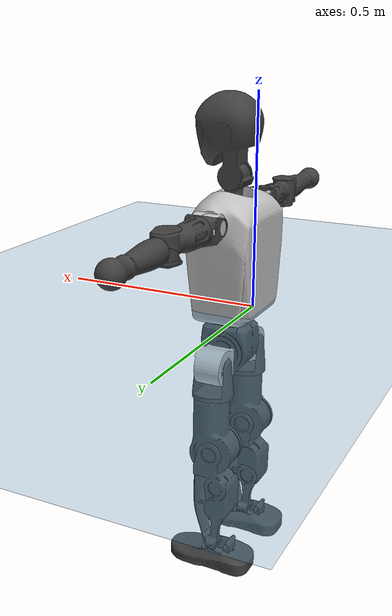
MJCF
<mujoco model="T1">
  <compiler angle="radian" assetdir="assets" balanceinertia="true" inertiafromgeom="false"/>

  <option timestep="0.005" density="1.2" viscosity="2e-05"/>

  <size nkey="1"/>

  <visual>
    <quality shadowsize="8192"/>
    <map shadowclip="0.5"/>
  </visual>

  <default>
    <default class="/">
      <joint armature="0.01" damping="0.01" frictionloss="0.1"/>
      <geom contype="0" conaffinity="0" group="1" solref="-1000 -80"/>
      <site size="0.01 0.005 0.005" group="5"/>
      <general forcelimited="true" biastype="affine" gainprm="25" biasprm="0 -25 -0.6"/>
      <default class="t1">
        <geom rgba="0.25 0.25 0.25 1"/>
        <default class="visual">
          <geom type="mesh" group="2"/>
        </default>
        <default class="collision">
          <geom group="3"/>
        </default>
        <default class="foot">
          <geom size="0.1115 0.05 0.015" type="box" condim="6" group="4" priority="1" solimp="0.015 1 0.015"/>
        </default>
        <default class="reward_collision_sphere">
          <geom group="5" rgba="1 0 0 1"/>
        </default>
      </default>
    </default>
  </default>

  <asset>
    <texture type="skybox" colorspace="auto" name="//unnamed_texture_0" builtin="gradient" rgb1="0.95 0.95 0.95" rgb2="0.95 0.95 0.95" width="100" height="600"/>
    <texture type="2d" colorspace="auto" name="texplane" builtin="checker" rgb1="0.345 0.575 0.748" rgb2="0.345 0.575 0.748" markrgb="1 1 1" width="512" height="512"/>
    <material name="MatPlane" class="/" texture="texplane" texuniform="true" texrepeat="2 2" specular="0.9"/>
    <mesh name="Trunk" class="/" file="Trunk.stl"/>
    <mesh name="H1" class="/" file="H1.stl"/>
    <mesh name="H2" class="/" file="H2.stl"/>
    <mesh name="AL1" class="/" file="AL1.stl"/>
    <mesh name="AL2" class="/" file="AL2.stl"/>
    <mesh name="AL3" class="/" file="AL3.stl"/>
    <mesh name="left_hand_link" class="/" file="left_hand_link.stl"/>
    <mesh name="AR1" class="/" file="AR1.stl"/>
    <mesh name="AR2" class="/" file="AR2.stl"/>
    <mesh name="AR3" class="/" file="AR3.stl"/>
    <mesh name="right_hand_link" class="/" file="right_hand_link.stl"/>
    <mesh name="Waist" class="/" file="Waist.stl"/>
    <mesh name="Hip_Pitch_Left" class="/" file="Hip_Pitch_Left.stl"/>
    <mesh name="Hip_Roll_Left" class="/" file="Hip_Roll_Left.stl"/>
    <mesh name="Hip_Yaw_Left" class="/" file="Hip_Yaw_Left.stl"/>
    <mesh name="Shank_Left" class="/" file="Shank_Left.stl"/>
    <mesh name="Ankle_Cross_Left" class="/" file="Ankle_Cross_Left.stl"/>
    <mesh name="left_foot_link" class="/" file="left_foot_link.stl"/>
    <mesh name="Hip_Pitch_Right" class="/" file="Hip_Pitch_Right.stl"/>
    <mesh name="Hip_Roll_Right" class="/" file="Hip_Roll_Right.stl"/>
    <mesh name="Hip_Yaw_Right" class="/" file="Hip_Yaw_Right.stl"/>
    <mesh name="Shank_Right" class="/" file="Shank_Right.stl"/>
    <mesh name="Ankle_Cross_Right" class="/" file="Ankle_Cross_Right.stl"/>
    <mesh name="right_foot_link" class="/" file="right_foot_link.stl"/>
  </asset>

  <worldbody>
    <geom name="floor" class="/" size="100 100 0.125" type="plane" group="0" material="MatPlane"/>
    <light name="toplight_shadow" class="/" pos="0 0 5" dir="0.0990148 0.0990148 -0.990148" type="directional" ambient="0.04 0.04 0.04" diffuse="0.55 0.55 0.55" specular="0.12 0.12 0.12"/>
    <light name="toplight_fill" class="/" pos="0 0 5" dir="0.0990148 0.0990148 -0.990148" type="directional" castshadow="false" ambient="0.04 0.04 0.04" diffuse="0.3 0.3 0.3" specular="0.08 0.08 0.08"/>
    <body name="trunk" childclass="t1" pos="-6.54354e-05 -0.000410013 0.000360457" quat="1 0.000811755 -0.000328301 -0.000361621">
      <inertial pos="0.0517199 -0.000354859 0.106676" quat="0.999958 0.00132062 -0.00406218 0.00808797" mass="9.96379" diaginertia="0.0731375 0.043247 0.0617387"/>
      <joint name="//unnamed_joint_0" type="free" armature="0" damping="0" frictionloss="0"/>
      <geom name="//unnamed_geom_1" class="visual" rgba="0.76 0.76 0.76 1" mesh="Trunk"/>
      <geom name="//unnamed_geom_2" class="collision" size="0.0712961 0.0950614 0.142592" pos="0.0566778 0 0.121802" type="box"/>
      <geom name="//unnamed_geom_3" class="reward_collision_sphere" size="0.109321" pos="0.0566778 0 0.101502"/>
      <geom name="//unnamed_geom_4" class="reward_collision_sphere" size="0.0142592" pos="0.0566778 0.0758368 0"/>
      <geom name="//unnamed_geom_5" class="reward_collision_sphere" size="0.0142592" pos="0.0566778 -0.0758368 0"/>
      <geom name="//unnamed_geom_6" class="reward_collision_sphere" size="0.0142592" pos="0.0566778 0.0954651 0.182703"/>
      <geom name="//unnamed_geom_7" class="reward_collision_sphere" size="0.0142592" pos="0.0566778 -0.0954651 0.182703"/>
      <site name="imu" pos="0.00871634 -0.000106889 -0.00834043" size="0.00950614"/>
      <camera name="track" pos="0 -1.7844 0" quat="0.707107 0.707107 0 0" mode="trackcom"/>
      <camera name="ego_camera" pos="0.115245 0 0.426306" quat="-0.5 -0.5 0.5 0.5"/>
      <body name="H1" pos="0.0560577 -0.000415543 0.243993" quat="1 -1.30222e-05 2.73992e-05 -0.000261134">
        <inertial pos="-0.000729825 -0.00164512 0.058236" quat="0.763662 -0.0136306 0.00150946 0.645471" mass="0.377829" diaginertia="0.000178223 0.000123973 0.000161345"/>
        <joint name="AAHead_yaw" pos="0 0 0" axis="0.0040604 0.000466541 0.999992" stiffness="0.000620246" range="-1.53378 1.58151" armature="0.0107602" damping="0.00963984" frictionloss="0.107192"/>
        <geom name="//unnamed_geom_8" class="visual" mesh="H1"/>
        <body name="H2" pos="-0.000814459 -0.00284268 0.0638952" quat="1 7.54524e-05 -0.000195911 6.35386e-06">
          <inertial pos="0.0086759 -0.00188463 0.0974534" quat="0.987546 0.108153 -0.0852914 -0.0760294" mass="0.544869" diaginertia="0.00153464 0.00105762 0.0018598"/>
          <joint name="Head_pitch" pos="0 0 0" axis="-0.00286536 -0.999988 -0.00408474" range="-1.22106 0.369549" armature="0.00998283" damping="0" frictionloss="0.0929006"/>
          <geom name="//unnamed_geom_9" class="visual" mesh="H2"/>
          <geom name="//unnamed_geom_10" class="collision" size="0.0760492" pos="0.0094463 0 0.111652"/>
          <geom name="//unnamed_geom_11" class="reward_collision_sphere" size="0.0855553" pos="0.0188926 0 0.101502"/>
        </body>
      </body>
      <body name="AL1" pos="0.0544472 0.096651 0.219863" quat="0.999999 -0.00133924 6.09161e-05 -9.6951e-05">
        <inertial pos="-0.00238324 0.0400725 -0.000390011" quat="0.503891 0.495748 -0.504403 0.495888" mass="0.451515" diaginertia="0.00102255 0.000701871 0.000303862"/>
        <joint name="Left_Shoulder_Pitch" pos="0 0 0" axis="-0.00963473 0.999919 0.00833652" stiffness="0.00260673" range="-3.32042 1.27511" armature="0.00958296" damping="0" frictionloss="0.0975559"/>
        <geom name="//unnamed_geom_12" class="visual" rgba="0.76 0.76 0.76 1" mesh="AL1"/>
        <body name="AL2" pos="-0.00113572 0.0419478 -0.000585664" quat="1 -0.0001989 9.73405e-05 0.00021933">
          <inertial pos="0.00390722 0.0364612 -0.000638867" quat="0.490225 0.510814 -0.485593 0.512785" mass="0.13925" diaginertia="0.000307786 0.000195434 0.00019127"/>
          <joint name="Left_Shoulder_Roll" pos="0 0 0" axis="-1 -0.000693936 0.000318765" range="-1.56675 1.74952" armature="0.0108015" damping="0.00894195" frictionloss="0.0958699"/>
          <geom name="//unnamed_geom_13" class="visual" mesh="AL2"/>
          <body name="AL3" pos="0.000192264 0.0539819 0.000499619" quat="1 -0.000505182 -7.20125e-05 -0.000274026">
            <inertial pos="0.0020469 0.073511 -0.00097159" quat="0.706911 0.707293 0.00288204 -0.00238198" mass="0.826421" diaginertia="0.00970782 0.00710426 0.000635713"/>
            <joint name="Left_Elbow_Pitch" pos="0 0 0" axis="-0.000661512 -1 -0.000524765" range="-2.32725 2.27566" armature="0.0107787" damping="0.0134553" frictionloss="0.0924748"/>
            <geom name="//unnamed_geom_14" class="visual" mesh="AL3"/>
            <geom name="//unnamed_geom_15" class="collision" size="0.0285184 0.0712961" pos="0 0.0446099 0" quat="0.707105 0.707108 0 0" type="cylinder"/>
            <geom name="//unnamed_geom_16" class="reward_collision_sphere" size="0.0342221"/>
            <body name="left_hand_link" pos="0.00176264 0.130382 -0.000808061" quat="0.999999 -0.000867293 0.000495205 -0.000840377">
              <inertial pos="-0.00270014 0.0977449 0.000751633" quat="0.710816 0.70337 -0.000191145 -0.00349303" mass="0.280462" diaginertia="0.00592697 0.00456879 0.000238264"/>
              <joint name="Left_Elbow_Yaw" pos="0 0 0" axis="-0.000426014 0.00412335 0.999991" range="-2.45168 -0.0494166" armature="0.0097724" damping="0.0128274" frictionloss="0.0964066"/>
              <geom name="//unnamed_geom_17" class="visual" mesh="left_hand_link"/>
              <geom name="//unnamed_geom_18" class="collision" size="0.0285184 0.0831788" pos="0 0.115986 0" quat="0.707105 0.707108 0 0" type="cylinder"/>
              <geom name="//unnamed_geom_19" class="reward_collision_sphere" size="0.0475307"/>
              <geom name="//unnamed_geom_20" class="reward_collision_sphere" size="0.0332715" pos="0 0.0981417 0"/>
              <geom name="//unnamed_geom_21" class="reward_collision_sphere" size="0.0332715" pos="0 0.191822 0"/>
            </body>
          </body>
        </body>
      </body>
      <body name="AR1" pos="0.0534378 -0.096392 0.220413" quat="1 0.000305821 0.000302735 0.000151669">
        <inertial pos="-0.0020253 -0.04298 0.000825193" quat="0.502535 0.495099 -0.501977 0.500355" mass="0.436843" diaginertia="0.000994786 0.000705124 0.000304661"/>
        <joint name="Right_Shoulder_Pitch" pos="0 0 0" axis="0.00684525 -0.999881 -0.0138426" range="-1.22582 3.29964" armature="0.0106664" damping="0.0130855" frictionloss="0.0941834"/>
        <geom name="//unnamed_geom_22" class="visual" rgba="0.76 0.76 0.76 1" mesh="AR1"/>
        <body name="AR2" pos="0.00219597 -0.0392945 -0.000950764" quat="0.999999 -2.0516e-05 0.00110656 0.000896548">
          <inertial pos="0.00249688 -0.033399 0.00135344" quat="0.511555 0.488057 -0.511737 0.488095" mass="0.133171" diaginertia="0.000302408 0.000201829 0.000193056"/>
          <joint name="Right_Shoulder_Roll" pos="0 0 0" axis="-0.999984 -0.000357201 -0.00567652" range="-1.75062 1.55727" armature="0.00935245" damping="0.00572444" frictionloss="0.107518"/>
          <geom name="//unnamed_geom_23" class="visual" mesh="AR2"/>
          <body name="AR3" pos="0.000717377 -0.0551642 -0.00256621" quat="1 -4.15396e-05 -1.61647e-05 5.74944e-05">
            <inertial pos="0.000136914 -0.0788539 0.000423767" quat="0.712056 0.702042 0.0105534 0.00131571" mass="0.871769" diaginertia="0.00964701 0.00730089 0.000686732"/>
            <joint name="Right_Elbow_Pitch" pos="0 0 0" axis="0.0071393 0.99993 0.00944065" range="-2.32024 2.25031" armature="0.00816713" damping="0.00691597" frictionloss="0.101476"/>
            <geom name="//unnamed_geom_24" class="visual" mesh="AR3"/>
            <geom name="//unnamed_geom_25" class="collision" size="0.0285184 0.0712961" pos="0 -0.0446099 0" quat="0.707105 0.707108 0 0" type="cylinder"/>
            <geom name="//unnamed_geom_26" class="reward_collision_sphere" size="0.0342221"/>
            <body name="right_hand_link" pos="-0.00091297 -0.13139 -0.00190615" quat="0.999999 -0.000385748 -7.2423e-07 0.000938954">
              <inertial pos="-1.30363e-05 -0.0978229 0.0036514" quat="0.705984 0.708228 0.000307931 0.000130894" mass="0.283063" diaginertia="0.00611956 0.00460304 0.0002312"/>
              <joint name="Right_Elbow_Yaw" pos="0 0 0" axis="0.00183924 0.00213681 0.999996" range="-0.011072 2.46624" armature="0.0107968" damping="0" frictionloss="0.103808"/>
              <geom name="//unnamed_geom_27" class="visual" mesh="right_hand_link"/>
              <geom name="//unnamed_geom_28" class="collision" size="0.0285184 0.0831788" pos="0 -0.115986 0" quat="0.707105 0.707108 0 0" type="cylinder"/>
              <geom name="//unnamed_geom_29" class="reward_collision_sphere" size="0.0475307"/>
              <geom name="//unnamed_geom_30" class="reward_collision_sphere" size="0.0332715" pos="0 -0.0981417 0"/>
              <geom name="//unnamed_geom_31" class="reward_collision_sphere" size="0.0332715" pos="0 -0.191822 0"/>
            </body>
          </body>
        </body>
      </body>
      <body name="Waist" pos="0.0592656 -0.00370321 -0.114303" quat="1 0.000330774 -0.000294122 -0.000127569">
        <inertial pos="-5.7261e-05 0.000417295 0.00662716" quat="0.983074 0.00148871 -0.182964 -0.00937323" mass="2.14512" diaginertia="0.00387747 0.00288895 0.00496292"/>
        <joint name="Waist" pos="0 0 0" axis="0.00186402 -0.0122997 0.999923" range="-1.58728 1.51981" armature="0.00980317" damping="0.0148273" frictionloss="0.10669"/>
        <geom name="//unnamed_geom_32" class="visual" mesh="Waist"/>
        <body name="Hip_Pitch_Left" pos="0.000715994 0.0956535 0.000120546" quat="1 -5.21771e-05 2.7981e-05 2.15167e-05">
          <inertial pos="0.000594548 -0.00746629 -0.019084" quat="0.97628 0.216075 0.0135961 0.00220922" mass="0.881837" diaginertia="0.00135417 0.000855344 0.00135428"/>
          <joint name="Left_Hip_Pitch" pos="0 0 0" axis="0.00694959 0.999888 -0.0132347" range="-1.80861 1.62395" armature="0.00977788" damping="0" frictionloss="0.0926903"/>
          <geom name="//unnamed_geom_33" class="visual" rgba="0.76 0.76 0.76 1" mesh="Hip_Pitch_Left"/>
          <body name="Hip_Roll_Left" pos="0.00109079 0.00228793 -0.0187897" quat="0.999999 0.000350924 -0.00139055 -0.000527668">
            <inertial pos="-0.00112279 -8.18734e-05 -0.0551819" quat="0.709865 -0.00634308 -0.00758681 0.704269" mass="0.32375" diaginertia="0.00130811 0.000834689 0.000536328"/>
            <joint name="Left_Hip_Roll" pos="0 0 0" axis="-0.999941 0.0107415 0.0018409" stiffness="0.00615077" range="-1.57205 0.19519" armature="0.00933698" damping="0.0136158" frictionloss="0.0995923"/>
            <geom name="//unnamed_geom_34" class="visual" mesh="Hip_Roll_Left"/>
            <geom name="//unnamed_geom_35" class="reward_collision_sphere" size="0.0522838"/>
            <body name="Hip_Yaw_Left" pos="0.000547349 -0.00073331 -0.083904" quat="1 -1.60771e-05 0.000280013 5.88524e-05">
              <inertial pos="-0.00601952 -0.00170226 -0.0910124" quat="0.702383 -0.0444621 -0.0310082 0.709732" mass="1.80514" diaginertia="0.019248 0.0139569 0.00270209"/>
              <joint name="Left_Hip_Yaw" pos="0 0 0" axis="-0.00137668 -0.00411074 -0.999991" range="-1.04818 0.997926" armature="0.00952038" damping="0.0095407" frictionloss="0.0955755"/>
              <geom name="//unnamed_geom_36" class="visual" mesh="Hip_Yaw_Left"/>
              <geom name="//unnamed_geom_37" class="collision" size="0.0475307 0.0760492" type="cylinder"/>
              <body name="Shank_Left" pos="-0.0116986 -0.00233157 -0.136818" quat="1 -0.000100829 -0.000110439 -0.000252098">
                <inertial pos="-0.00515595 -0.00139853 -0.126421" quat="0.997637 -0.00973951 -0.0246934 0.0633702" mass="1.51977" diaginertia="0.0264086 0.0196859 0.00196219"/>
                <joint name="Left_Knee_Pitch" pos="0 0 0" axis="-0.00627044 0.99998 -0.000545893" range="-0.0160343 2.33021" armature="0.0107222" damping="0" frictionloss="0.10019"/>
                <geom name="//unnamed_geom_38" class="visual" mesh="Shank_Left"/>
                <geom name="//unnamed_geom_39" class="collision" size="0.0475307 0.0712961" pos="0 0 -0.121802" type="cylinder"/>
                <geom name="//unnamed_geom_40" class="reward_collision_sphere" size="0.0617899"/>
                <body name="Ankle_Cross_Left" pos="0.00167069 0.00171217 -0.286981" quat="0.999999 0.00117314 -0.00045344 -0.000368256">
                  <inertial pos="-0.00354722 -0.00240285 -0.00781221" quat="0.449848 0.544178 0.550761 0.445163" mass="0.0623915" diaginertia="2.16211e-05 1.48414e-05 1.23879e-05"/>
                  <joint name="Left_Ankle_Pitch" pos="0 0 0" axis="-0.00263305 0.999971 0.00710821" range="-0.882255 0.331149" armature="0.00986014" damping="0.00578042" frictionloss="0.0957337"/>
                  <geom name="//unnamed_geom_41" class="visual" mesh="Ankle_Cross_Left"/>
                  <body name="left_foot_link" pos="-0.00236997 -0.00282778 -0.0119519" quat="1 0.000108258 -5.85735e-05 1.82955e-05">
                    <inertial pos="0.00222468 -0.000139248 -0.00655962" quat="-1.89122e-05 0.624279 0.00283746 0.781196" mass="0.59727" diaginertia="0.00208262 0.00135203 0.00240243"/>
                    <joint name="Left_Ankle_Roll" pos="0 0 0" axis="-1 0.000246789 -9.08436e-05" stiffness="0.0056909" range="-0.442319 0.4368" armature="0.00818676" damping="0.00347786" frictionloss="0.0944844"/>
                    <geom name="//unnamed_geom_42" class="visual" mesh="left_foot_link"/>
                    <geom name="left_foot" class="foot" size="0.10237 0.0465005 0.0136125" pos="0.0094463 0 -0.0152252"/>
                    <geom name="//unnamed_geom_44" class="reward_collision_sphere" size="0.049432" pos="0.0094463 0 -0.0152252"/>
                    <geom name="//unnamed_geom_45" class="reward_collision_sphere" size="0.0285184" pos="0.0897399 -0.0205205 -0.0152252"/>
                    <geom name="//unnamed_geom_46" class="reward_collision_sphere" size="0.0285184" pos="-0.0661241 -0.0205205 -0.0152252"/>
                    <site name="left_foot" class="foot" pos="0.0094463 0 -0.0152252" size="0.00950614"/>
                  </body>
                </body>
              </body>
            </body>
          </body>
        </body>
        <body name="Hip_Pitch_Right" pos="-0.00257114 -0.0939751 -0.00111712" quat="0.999999 0.00034226 -0.000260085 -0.00142939">
          <inertial pos="0.00119085 0.004137 -0.0180456" quat="0.973594 -0.227421 0.0195848 -0.00339005" mass="0.860539" diaginertia="0.00131257 0.000804817 0.00131399"/>
          <joint name="Right_Hip_Pitch" pos="0 0 0" axis="-1.00245e-05 -1 2.51844e-06" range="-1.6076 1.79033" armature="0.00939613" damping="0.012619" frictionloss="0.10781"/>
          <geom name="//unnamed_geom_47" class="visual" rgba="0.76 0.76 0.76 1" mesh="Hip_Pitch_Right"/>
          <body name="Hip_Roll_Right" pos="-0.000958996 0.000326533 -0.0197227" quat="1 0.000177369 -0.000117327 0.000222233">
            <inertial pos="-0.00148756 0.00255886 -0.0571307" quat="0.707118 -0.00578522 -0.00603899 0.707046" mass="0.333285" diaginertia="0.001336 0.000853048 0.000551301"/>
            <joint name="Right_Hip_Roll" pos="0 0 0" axis="-0.999983 0.00355954 -0.00454635" stiffness="0.00190427" range="-0.206395 1.57094" armature="0.00949708" damping="0.00655833" frictionloss="0.0934941"/>
            <geom name="//unnamed_geom_48" class="visual" mesh="Hip_Roll_Right"/>
            <geom name="//unnamed_geom_49" class="reward_collision_sphere" size="0.0522838"/>
            <body name="Hip_Yaw_Right" pos="-0.000377455 -0.001838 -0.0815097" quat="1 0.000208776 8.8815e-05 -0.000110037">
              <inertial pos="-0.00542591 -0.00147642 -0.0917712" quat="0.714315 -0.0309325 -0.0339021 0.698318" mass="1.84462" diaginertia="0.0198325 0.0142152 0.0028319"/>
              <joint name="Right_Hip_Yaw" pos="0 0 0" axis="-0.00555184 0.00240955 -0.999982" stiffness="0.00446284" range="-0.979943 0.954695" armature="0.00829167" damping="0.0193644" frictionloss="0.10763"/>
              <geom name="//unnamed_geom_50" class="visual" mesh="Hip_Yaw_Right"/>
              <geom name="//unnamed_geom_51" class="collision" size="0.0475307 0.0760492" type="cylinder"/>
              <body name="Shank_Right" pos="-0.0125863 0.00230947 -0.136037" quat="0.999999 -0.000589555 -0.000316333 0.00112984">
                <inertial pos="-0.00571926 0.00200235 -0.12186" quat="0.999195 -0.00762561 -0.0282162 -0.0274728" mass="1.49375" diaginertia="0.0260857 0.0196616 0.00218391"/>
                <joint name="Right_Knee_Pitch" pos="0 0 0" axis="-0.00158893 -0.999998 0.0011207" stiffness="0.000241456" range="-2.29227 -0.0533251" armature="0.00983287" damping="0.0152049" frictionloss="0.0975988"/>
                <geom name="//unnamed_geom_52" class="visual" mesh="Shank_Right"/>
                <geom name="//unnamed_geom_53" class="collision" size="0.0475307 0.0712961" pos="0 0 -0.121802" type="cylinder"/>
                <geom name="//unnamed_geom_54" class="reward_collision_sphere" size="0.0617899"/>
                <body name="Ankle_Cross_Right" pos="0.00158227 -0.00297524 -0.284707" quat="0.999999 -0.000225668 -0.000492297 -0.00118913">
                  <inertial pos="-0.00294127 0.000959086 -0.0061182" quat="0.445254 0.548755 0.55092 0.443964" mass="0.0630541" diaginertia="2.15032e-05 1.44851e-05 1.18485e-05"/>
                  <joint name="Right_Ankle_Pitch" pos="0 0 0" axis="-0.00649625 -0.999975 0.0029483" range="-0.39798 0.874765" armature="0.00966683" damping="0.00656755" frictionloss="0.0976927"/>
                  <geom name="//unnamed_geom_55" class="visual" mesh="Ankle_Cross_Right"/>
                  <body name="right_foot_link" pos="0.00087518 -0.00327295 -0.0123118" quat="1 2.02596e-05 0.000179661 -0.000328099">
                    <inertial pos="-0.000407616 -0.000990071 -0.0115512" quat="0.00141003 0.624765 0.000311808 0.780811" mass="0.593542" diaginertia="0.00203174 0.00134491 0.00230752"/>
                    <joint name="Right_Ankle_Roll" pos="0 0 0" axis="-0.99998 0.00567062 0.00269404" range="-0.386853 0.445294" armature="0.010656" damping="0.00650218" frictionloss="0.0868616"/>
                    <geom name="//unnamed_geom_56" class="visual" mesh="right_foot_link"/>
                    <geom name="right_foot" class="foot" size="0.0834108 0.0455744 0.0132745" pos="0.0094463 0 -0.0152252"/>
                    <geom name="//unnamed_geom_58" class="reward_collision_sphere" size="0.0380246"/>
                    <geom name="//unnamed_geom_59" class="reward_collision_sphere" size="0.0285184" pos="0.0094463 0 -0.0152252"/>
                    <geom name="//unnamed_geom_60" class="reward_collision_sphere" size="0.0285184" pos="0.0897399 0.0205205 -0.0152252"/>
                    <geom name="//unnamed_geom_61" class="reward_collision_sphere" size="0.0285184" pos="-0.0661241 0.0205205 -0.0152252"/>
                    <site name="right_foot" class="foot" pos="0.0094463 0 -0.0152252" size="0.00950614"/>
                  </body>
                </body>
              </body>
            </body>
          </body>
        </body>
      </body>
    </body>
  </worldbody>

  <contact>
    <pair class="/" geom1="floor" geom2="left_foot" name="//unnamed_contact_0"/>
    <pair class="/" geom1="floor" geom2="right_foot" name="//unnamed_contact_1"/>
  </contact>

  <actuator>
    <general name="AAHead_yaw" class="/" joint="AAHead_yaw" forcerange="-6.4371 6.4371" gainprm="24.3277" biasprm="0 -24.3277 -0.575909"/>
    <general name="Head_pitch" class="/" joint="Head_pitch" forcerange="-7.05531 7.05531" gainprm="24.3277" biasprm="0 -24.3277 -0.575909"/>
    <general name="Left_Shoulder_Pitch" class="/" joint="Left_Shoulder_Pitch" forcerange="-17.6757 17.6757" gainprm="24.3277" biasprm="0 -24.3277 -0.575909"/>
    <general name="Left_Shoulder_Roll" class="/" joint="Left_Shoulder_Roll" forcerange="-18.5621 18.5621" gainprm="24.3277" biasprm="0 -24.3277 -0.575909"/>
    <general name="Left_Elbow_Pitch" class="/" joint="Left_Elbow_Pitch" forcerange="-17.0928 17.0928" gainprm="24.3277" biasprm="0 -24.3277 -0.575909"/>
    <general name="Left_Elbow_Yaw" class="/" joint="Left_Elbow_Yaw" forcerange="-17.6459 17.6459" gainprm="24.3277" biasprm="0 -24.3277 -0.575909"/>
    <general name="Right_Shoulder_Pitch" class="/" joint="Right_Shoulder_Pitch" forcerange="-17.1587 17.1587" gainprm="24.3277" biasprm="0 -24.3277 -0.575909"/>
    <general name="Right_Shoulder_Roll" class="/" joint="Right_Shoulder_Roll" forcerange="-17.6275 17.6275" gainprm="24.3277" biasprm="0 -24.3277 -0.575909"/>
    <general name="Right_Elbow_Pitch" class="/" joint="Right_Elbow_Pitch" forcerange="-16.4125 16.4125" gainprm="24.3277" biasprm="0 -24.3277 -0.575909"/>
    <general name="Right_Elbow_Yaw" class="/" joint="Right_Elbow_Yaw" forcerange="-17.8056 17.8056" gainprm="24.3277" biasprm="0 -24.3277 -0.575909"/>
    <general name="Waist" class="/" joint="Waist" forcerange="-26.1683 26.1683" gainprm="24.3277" biasprm="0 -24.3277 -0.575909"/>
    <general name="Left_Hip_Pitch" class="/" joint="Left_Hip_Pitch" forcerange="-44.0525 44.0525" gainprm="24.3277" biasprm="0 -24.3277 -0.575909"/>
    <general name="Left_Hip_Roll" class="/" joint="Left_Hip_Roll" forcerange="-28.0408 28.0408" gainprm="24.3277" biasprm="0 -24.3277 -0.575909"/>
    <general name="Left_Hip_Yaw" class="/" joint="Left_Hip_Yaw" forcerange="-29.5913 29.5913" gainprm="24.3277" biasprm="0 -24.3277 -0.575909"/>
    <general name="Left_Knee_Pitch" class="/" joint="Left_Knee_Pitch" forcerange="-51.7588 51.7588" gainprm="24.3277" biasprm="0 -24.3277 -0.575909"/>
    <general name="Left_Ankle_Pitch" class="/" joint="Left_Ankle_Pitch" forcerange="-20.9287 20.9287" gainprm="24.3277" biasprm="0 -24.3277 -0.575909"/>
    <general name="Left_Ankle_Roll" class="/" joint="Left_Ankle_Roll" forcerange="-12.882 12.882" gainprm="24.3277" biasprm="0 -24.3277 -0.575909"/>
    <general name="Right_Hip_Pitch" class="/" joint="Right_Hip_Pitch" forcerange="-42.9397 42.9397" gainprm="24.3277" biasprm="0 -24.3277 -0.575909"/>
    <general name="Right_Hip_Roll" class="/" joint="Right_Hip_Roll" forcerange="-26.0708 26.0708" gainprm="24.3277" biasprm="0 -24.3277 -0.575909"/>
    <general name="Right_Hip_Yaw" class="/" joint="Right_Hip_Yaw" forcerange="-31.4025 31.4025" gainprm="24.3277" biasprm="0 -24.3277 -0.575909"/>
    <general name="Right_Knee_Pitch" class="/" joint="Right_Knee_Pitch" forcerange="-54.943 54.943" gainprm="24.3277" biasprm="0 -24.3277 -0.575909"/>
    <general name="Right_Ankle_Pitch" class="/" joint="Right_Ankle_Pitch" forcerange="-19.1818 19.1818" gainprm="24.3277" biasprm="0 -24.3277 -0.575909"/>
    <general name="Right_Ankle_Roll" class="/" joint="Right_Ankle_Roll" forcerange="-14.4462 14.4462" gainprm="24.3277" biasprm="0 -24.3277 -0.575909"/>
  </actuator>

  <sensor>
    <gyro site="imu" name="imu_angular_velocity"/>
    <velocimeter site="imu" name="imu_linear_velocity"/>
    <framelinvel objtype="site" objname="left_foot" name="left_foot_global_linear_velocity"/>
    <framelinvel objtype="site" objname="right_foot" name="right_foot_global_linear_velocity"/>
  </sensor>

  <keyframe>
    <key name="home" qpos="0 0 0.6385 1 0 0 0 0 0 0 1.4 0 -0.4 0 -1.4 0 0.4 0 -0.4 0 0 0.8 -0.4 0 0.4 0 0 -0.8 0.4 0"/>
  </keyframe>
</mujoco>
